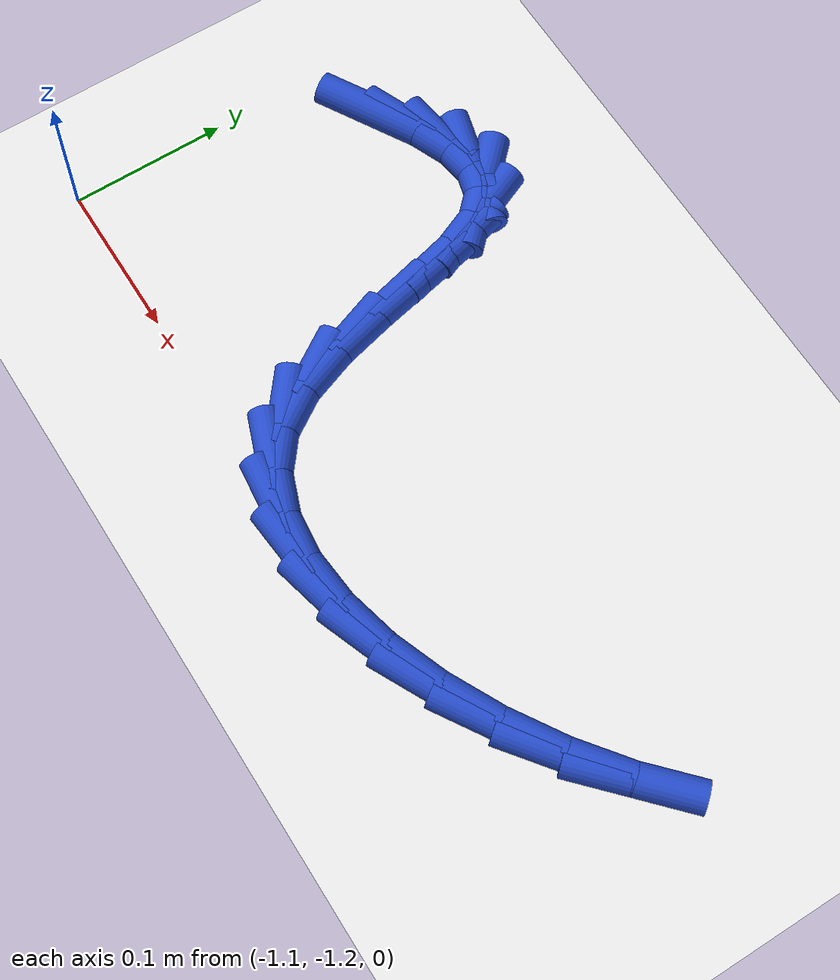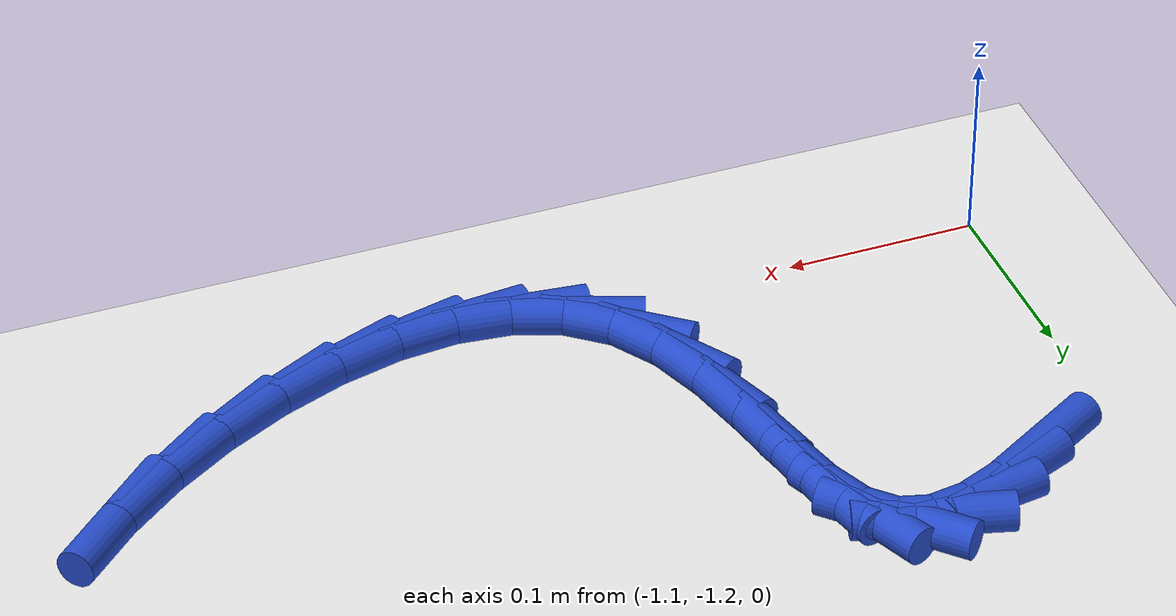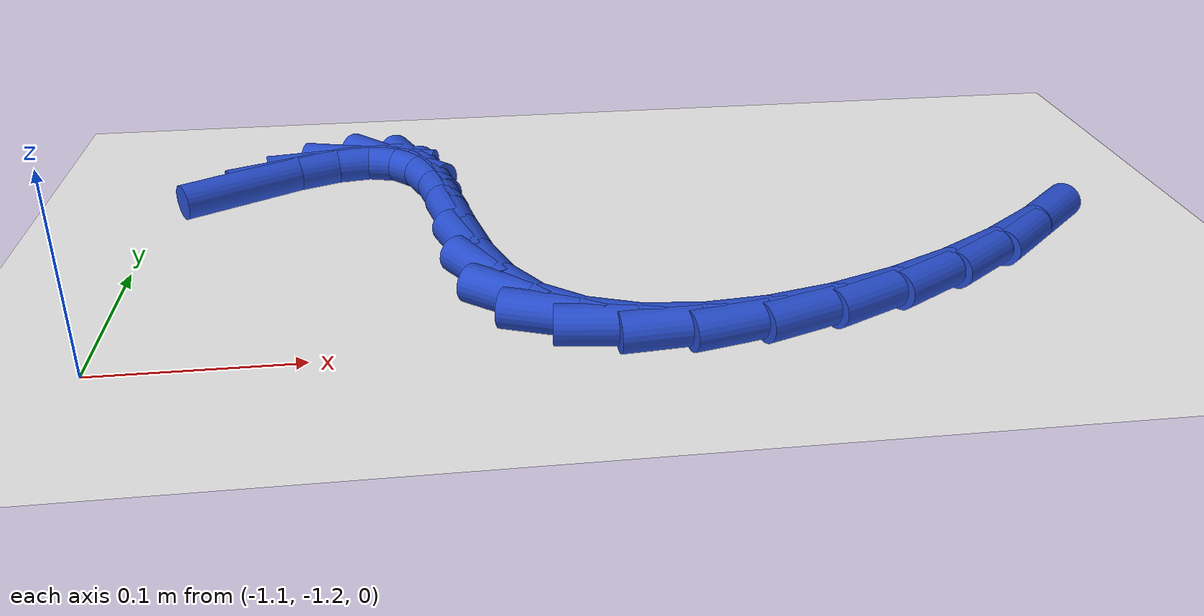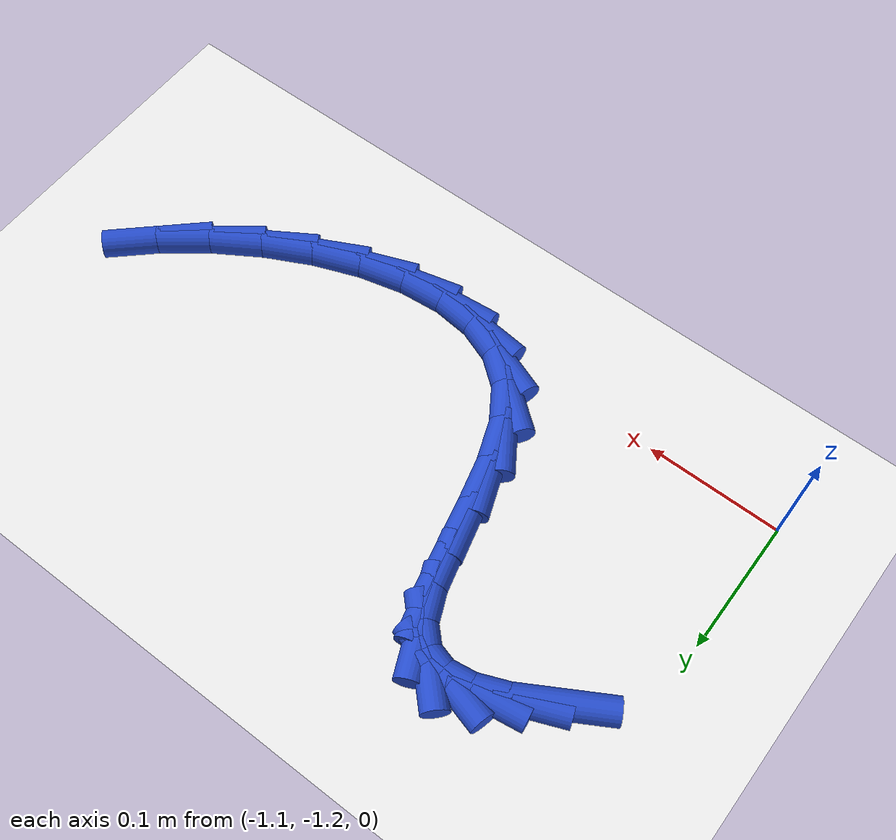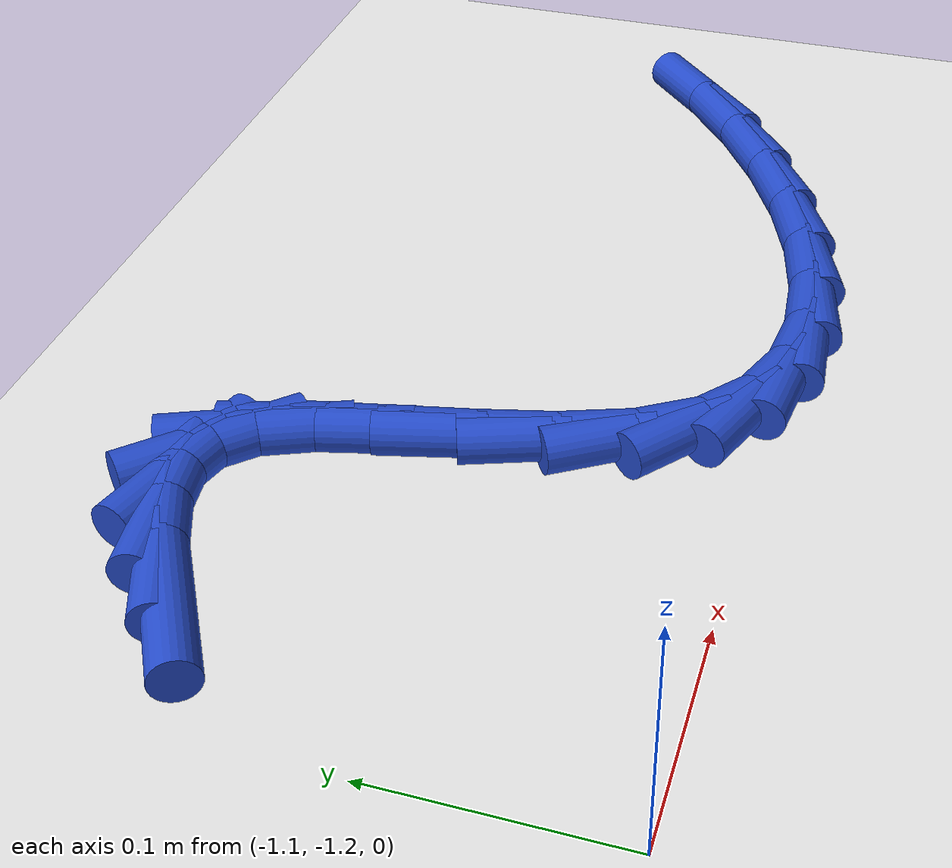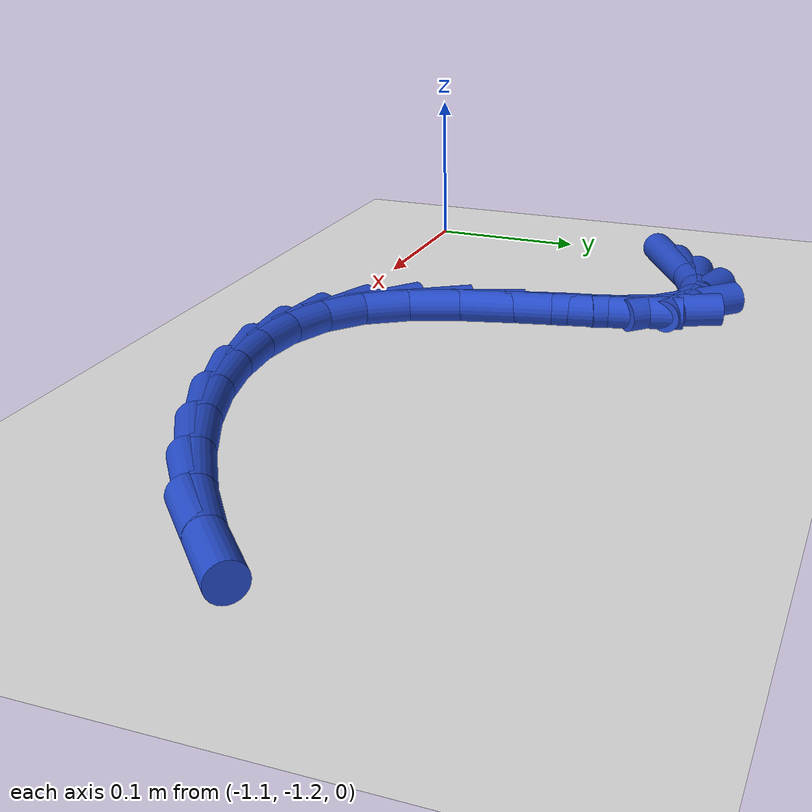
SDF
<sdf version="1.6">
 <world name="default">
  <model name="ground_plane">
   <static>1</static>
   <link name="link">
    <collision name="collision">
     <geometry><plane><normal>0 0 1</normal><size>100 100</size></plane></geometry>
     <surface><friction><ode><mu>100</mu><mu2>50</mu2></ode></friction></surface>
    </collision>
    <visual name="visual">
     <cast_shadows>0</cast_shadows>
     <geometry><plane><normal>0 0 1</normal><size>100 100</size></plane></geometry>
     <material>
      <script><uri>file://media/materials/scripts/gazebo.material</uri><name>Gazebo/WhiteGlow</name></script>
     </material>
    </visual>
   </link>
  </model>
  <model name="line">
   <link name="link_187">
    <pose>-1.0505865042371159 -1.012322858514023 0.01 0 1.57 0.5244595360036042</pose>
    <collision name="collision">
     <geometry><cylinder><radius>0.01</radius><length>0.08</length></cylinder></geometry>
    </collision>
    <visual name="visual">
     <material>
      <script><name>Gazebo/Blue</name><uri>file://media/materials/scripts/gazebo.material</uri></script>
     </material>
     <geometry><cylinder><radius>0.01</radius><length>0.08</length></cylinder></geometry>
    </visual>
   </link>
   <link name="link_188">
    <pose>-1.0256728389673628 -0.9979103400115277 0.01 0 1.57 0.3903757891532495</pose>
    <collision name="collision">
     <geometry><cylinder><radius>0.01</radius><length>0.08</length></cylinder></geometry>
    </collision>
    <visual name="visual">
     <material>
      <script><name>Gazebo/Blue</name><uri>file://media/materials/scripts/gazebo.material</uri></script>
     </material>
     <geometry><cylinder><radius>0.01</radius><length>0.08</length></cylinder></geometry>
    </visual>
   </link>
   <link name="link_189">
    <pose>-1.0032922657021965 -0.988700862402009 0.01 0 1.57 0.1465462712222739</pose>
    <collision name="collision">
     <geometry><cylinder><radius>0.01</radius><length>0.08</length></cylinder></geometry>
    </collision>
    <visual name="visual">
     <material>
      <script><name>Gazebo/Blue</name><uri>file://media/materials/scripts/gazebo.material</uri></script>
     </material>
     <geometry><cylinder><radius>0.01</radius><length>0.08</length></cylinder></geometry>
    </visual>
   </link>
   <link name="link_190">
    <pose>-0.9837493736592935 -0.9858162449873688 0.01 0 1.57 -0.2713053464120058</pose>
    <collision name="collision">
     <geometry><cylinder><radius>0.01</radius><length>0.08</length></cylinder></geometry>
    </collision>
    <visual name="visual">
     <material>
      <script><name>Gazebo/Blue</name><uri>file://media/materials/scripts/gazebo.material</uri></script>
     </material>
     <geometry><cylinder><radius>0.01</radius><length>0.08</length></cylinder></geometry>
    </visual>
   </link>
   <link name="link_191">
    <pose>-0.9673487520563293 -0.990378307069508 0.01 0 1.57 -0.7921760364243039</pose>
    <collision name="collision">
     <geometry><cylinder><radius>0.01</radius><length>0.08</length></cylinder></geometry>
    </collision>
    <visual name="visual">
     <material>
      <script><name>Gazebo/Blue</name><uri>file://media/materials/scripts/gazebo.material</uri></script>
     </material>
     <geometry><cylinder><radius>0.01</radius><length>0.08</length></cylinder></geometry>
    </visual>
   </link>
   <link name="link_192">
    <pose>-0.9543949901109798 -1.0035088679503283 0.01 0 1.57 -1.1658727084169274</pose>
    <collision name="collision">
     <geometry><cylinder><radius>0.01</radius><length>0.08</length></cylinder></geometry>
    </collision>
    <visual name="visual">
     <material>
      <script><name>Gazebo/Blue</name><uri>file://media/materials/scripts/gazebo.material</uri></script>
     </material>
     <geometry><cylinder><radius>0.01</radius><length>0.08</length></cylinder></geometry>
    </visual>
   </link>
   <link name="link_193">
    <pose>-0.9448900255127115 -1.0256851689745317 0.01 0 1.57 -1.3205778651819573</pose>
    <collision name="collision">
     <geometry><cylinder><radius>0.01</radius><length>0.08</length></cylinder></geometry>
    </collision>
    <visual name="visual">
     <material>
      <script><name>Gazebo/Blue</name><uri>file://media/materials/scripts/gazebo.material</uri></script>
     </material>
     <geometry><cylinder><radius>0.01</radius><length>0.08</length></cylinder></geometry>
    </visual>
   </link>
   <link name="link_194">
    <pose>-0.9375100929166535 -1.0545610097590337 0.01 0 1.57 -1.3600970552700098</pose>
    <collision name="collision">
     <geometry><cylinder><radius>0.01</radius><length>0.08</length></cylinder></geometry>
    </collision>
    <visual name="visual">
     <material>
      <script><name>Gazebo/Blue</name><uri>file://media/materials/scripts/gazebo.material</uri></script>
     </material>
     <geometry><cylinder><radius>0.01</radius><length>0.08</length></cylinder></geometry>
    </visual>
   </link>
   <link name="link_195">
    <pose>-0.930568542961162 -1.0870173306538042 0.01 0 1.57 -1.326950349342444</pose>
    <collision name="collision">
     <geometry><cylinder><radius>0.01</radius><length>0.08</length></cylinder></geometry>
    </collision>
    <visual name="visual">
     <material>
      <script><name>Gazebo/Blue</name><uri>file://media/materials/scripts/gazebo.material</uri></script>
     </material>
     <geometry><cylinder><radius>0.01</radius><length>0.08</length></cylinder></geometry>
    </visual>
   </link>
   <link name="link_196">
    <pose>-0.9223787170909369 -1.1199350524284464 0.01 0 1.57 -1.218495043875484</pose>
    <collision name="collision">
     <geometry><cylinder><radius>0.01</radius><length>0.08</length></cylinder></geometry>
    </collision>
    <visual name="visual">
     <material>
      <script><name>Gazebo/Blue</name><uri>file://media/materials/scripts/gazebo.material</uri></script>
     </material>
     <geometry><cylinder><radius>0.01</radius><length>0.08</length></cylinder></geometry>
    </visual>
   </link>
   <link name="link_197">
    <pose>-0.9112539567506778 -1.1501950958525629 0.01 0 1.57 -0.9999525787609137</pose>
    <collision name="collision">
     <geometry><cylinder><radius>0.01</radius><length>0.08</length></cylinder></geometry>
    </collision>
    <visual name="visual">
     <material>
      <script><name>Gazebo/Blue</name><uri>file://media/materials/scripts/gazebo.material</uri></script>
     </material>
     <geometry><cylinder><radius>0.01</radius><length>0.08</length></cylinder></geometry>
    </visual>
   </link>
   <link name="link_198">
    <pose>-0.8955202928099845 -1.1746962699863672 0.01 0 1.57 -0.6770713100796538</pose>
    <collision name="collision">
     <geometry><cylinder><radius>0.01</radius><length>0.08</length></cylinder></geometry>
    </collision>
    <visual name="visual">
     <material>
      <script><name>Gazebo/Blue</name><uri>file://media/materials/scripts/gazebo.material</uri></script>
     </material>
     <geometry><cylinder><radius>0.01</radius><length>0.08</length></cylinder></geometry>
    </visual>
   </link>
   <link name="link_199">
    <pose>-0.8744327771978911 -1.1916470254873557 0.01 0 1.57 -0.36465552225922665</pose>
    <collision name="collision">
     <geometry><cylinder><radius>0.01</radius><length>0.08</length></cylinder></geometry>
    </collision>
    <visual name="visual">
     <material>
      <script><name>Gazebo/Blue</name><uri>file://media/materials/scripts/gazebo.material</uri></script>
     </material>
     <geometry><cylinder><radius>0.01</radius><length>0.08</length></cylinder></geometry>
    </visual>
   </link>
   <link name="link_200">
    <pose>-0.8487921405669309 -1.2014347573241055 0.01 0 1.57 -0.10959149962640534</pose>
    <collision name="collision">
     <geometry><cylinder><radius>0.01</radius><length>0.08</length></cylinder></geometry>
    </collision>
    <visual name="visual">
     <material>
      <script><name>Gazebo/Blue</name><uri>file://media/materials/scripts/gazebo.material</uri></script>
     </material>
     <geometry><cylinder><radius>0.01</radius><length>0.08</length></cylinder></geometry>
    </visual>
   </link>
   <link name="link_201">
    <pose>-0.8195452451465839 -1.2046528622451356 0.01 0 1.57 0.08623019274528143</pose>
    <collision name="collision">
     <geometry><cylinder><radius>0.01</radius><length>0.08</length></cylinder></geometry>
    </collision>
    <visual name="visual">
     <material>
      <script><name>Gazebo/Blue</name><uri>file://media/materials/scripts/gazebo.material</uri></script>
     </material>
     <geometry><cylinder><radius>0.01</radius><length>0.08</length></cylinder></geometry>
    </visual>
   </link>
   <link name="link_202">
    <pose>-0.787638953166329 -1.2018947369989634 0.01 0 1.57 0.23758138332634723</pose>
    <collision name="collision">
     <geometry><cylinder><radius>0.01</radius><length>0.08</length></cylinder></geometry>
    </collision>
    <visual name="visual">
     <material>
      <script><name>Gazebo/Blue</name><uri>file://media/materials/scripts/gazebo.material</uri></script>
     </material>
     <geometry><cylinder><radius>0.01</radius><length>0.08</length></cylinder></geometry>
    </visual>
   </link>
   <link name="link_203">
    <pose>-0.7540201268556469 -1.1937537783341075 0.01 0 1.57 0.35969356819581216</pose>
    <collision name="collision">
     <geometry><cylinder><radius>0.01</radius><length>0.08</length></cylinder></geometry>
    </collision>
    <visual name="visual">
     <material>
      <script><name>Gazebo/Blue</name><uri>file://media/materials/scripts/gazebo.material</uri></script>
     </material>
     <geometry><cylinder><radius>0.01</radius><length>0.08</length></cylinder></geometry>
    </visual>
   </link>
   <link name="link_204">
    <pose>-0.7196356284440169 -1.1808233829990864 0.01 0 1.57 0.46422706014437776</pose>
    <collision name="collision">
     <geometry><cylinder><radius>0.01</radius><length>0.08</length></cylinder></geometry>
    </collision>
    <visual name="visual">
     <material>
      <script><name>Gazebo/Blue</name><uri>file://media/materials/scripts/gazebo.material</uri></script>
     </material>
     <geometry><cylinder><radius>0.01</radius><length>0.08</length></cylinder></geometry>
    </visual>
   </link>
   <link name="link_205">
    <pose>-0.6854323201609189 -1.163696947742418 0.01 0 1.57 0.5598385570336032</pose>
    <collision name="collision">
     <geometry><cylinder><radius>0.01</radius><length>0.08</length></cylinder></geometry>
    </collision>
    <visual name="visual">
     <material>
      <script><name>Gazebo/Blue</name><uri>file://media/materials/scripts/gazebo.material</uri></script>
     </material>
     <geometry><cylinder><radius>0.01</radius><length>0.08</length></cylinder></geometry>
    </visual>
   </link>
   <link name="link_206">
    <pose>-0.6523570642358325 -1.1429678693126204 0.01 0 1.57 0.6535013491743091</pose>
    <collision name="collision">
     <geometry><cylinder><radius>0.01</radius><length>0.08</length></cylinder></geometry>
    </collision>
    <visual name="visual">
     <material>
      <script><name>Gazebo/Blue</name><uri>file://media/materials/scripts/gazebo.material</uri></script>
     </material>
     <geometry><cylinder><radius>0.01</radius><length>0.08</length></cylinder></geometry>
    </visual>
   </link>
   <link name="link_207">
    <pose>-0.6213567228982378 -1.119229544458212 0.01 0 1.57 0.7517087592228924</pose>
    <collision name="collision">
     <geometry><cylinder><radius>0.01</radius><length>0.08</length></cylinder></geometry>
    </collision>
    <visual name="visual">
     <material>
      <script><name>Gazebo/Blue</name><uri>file://media/materials/scripts/gazebo.material</uri></script>
     </material>
     <geometry><cylinder><radius>0.01</radius><length>0.08</length></cylinder></geometry>
    </visual>
   </link>
  </model>
 </world>
</sdf>
